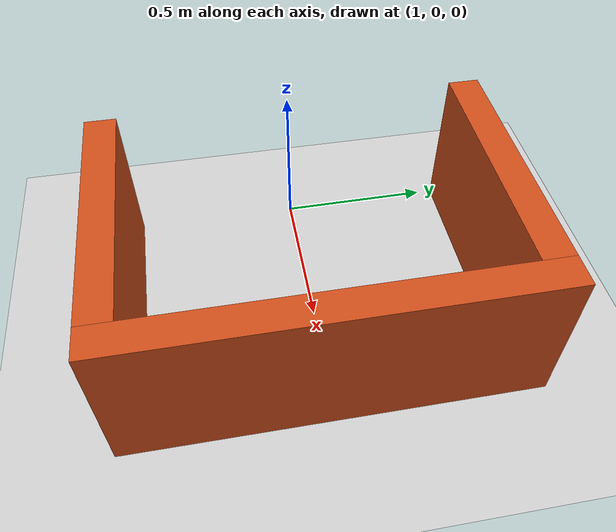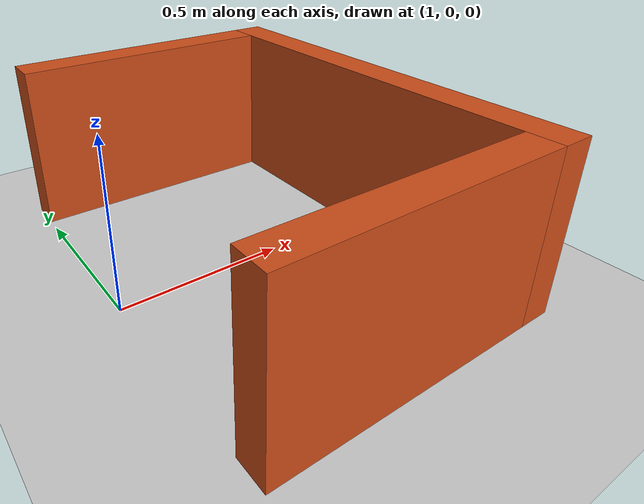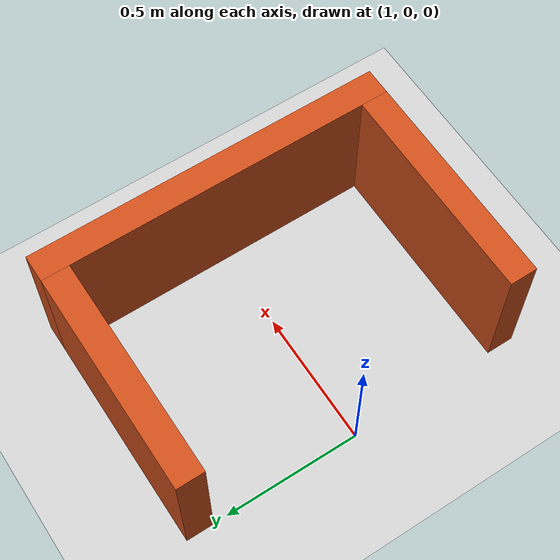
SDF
<?xml version="1.0"?>
<sdf version="1.6">
  <world name="default">
  <plugin
    filename="gz-sim-physics-system"
    name="gz::sim::systems::Physics">
  </plugin>
  <plugin
    filename="gz-sim-user-commands-system"
    name="gz::sim::systems::UserCommands">
  </plugin>
  <plugin
    filename="gz-sim-scene-broadcaster-system"
    name="gz::sim::systems::SceneBroadcaster">
  </plugin>
  <plugin
    filename="gz-sim-sensors-system"
    name="gz::sim::systems::Sensors">
    <render_engine>ogre2</render_engine>
  </plugin>
  <plugin
    filename="gz-sim-imu-system"
    name="gz::sim::systems::Imu">
  </plugin>
    <include>
      <uri>https://fuel.gazebosim.org/1.0/OpenRobotics/models/Ground Plane</uri>
    </include>

    <include>
      <uri>https://fuel.gazebosim.org/1.0/OpenRobotics/models/Sun</uri>
    </include>

    <model name="u_back">
      <static>true</static>
      <pose>1.85 0 0.25 0 0 0</pose>
      <link name="link">
        <collision name="collision">
          <geometry><box><size>0.1 1.3 0.5</size></box></geometry>
        </collision>
        <visual name="visual">
          <geometry><box><size>0.1 1.3 0.5</size></box></geometry>
          <material>
            <ambient>0.8 0.3 0.1 1</ambient>
            <diffuse>0.8 0.3 0.1 1</diffuse>
          </material>
        </visual>
      </link>
    </model>

    <model name="u_left">
      <static>true</static>
      <pose>1.4 0.6 0.25 0 0 0</pose>
      <link name="link">
        <collision name="collision">
          <geometry><box><size>0.8 0.1 0.5</size></box></geometry>
        </collision>
        <visual name="visual">
          <geometry><box><size>0.8 0.1 0.5</size></box></geometry>
          <material>
            <ambient>0.8 0.3 0.1 1</ambient>
            <diffuse>0.8 0.3 0.1 1</diffuse>
          </material>
        </visual>
      </link>
    </model>

    <model name="u_right">
      <static>true</static>
      <pose>1.4 -0.6 0.25 0 0 0</pose>
      <link name="link">
        <collision name="collision">
          <geometry><box><size>0.8 0.1 0.5</size></box></geometry>
        </collision>
        <visual name="visual">
          <geometry><box><size>0.8 0.1 0.5</size></box></geometry>
          <material>
            <ambient>0.8 0.3 0.1 1</ambient>
            <diffuse>0.8 0.3 0.1 1</diffuse>
          </material>
        </visual>
      </link>
    </model>

    <scene>
      <shadows>false</shadows>
    </scene>

    <gui fullscreen='0'>
      <camera name='user_camera'>
        <pose frame=''>0.319654 -0.235002 9.29441 0 1.5138 0.009599</pose>
        <view_controller>orbit</view_controller>
        <projection_type>perspective</projection_type>
      </camera>
    </gui>

    <physics type="ode">
      <real_time_update_rate>1000.0</real_time_update_rate>
      <max_step_size>0.001</max_step_size>
      <real_time_factor>1</real_time_factor>
      <ode>
        <solver>
          <type>quick</type>
          <iters>150</iters>
          <precon_iters>0</precon_iters>
          <sor>1.400000</sor>
          <use_dynamic_moi_rescaling>1</use_dynamic_moi_rescaling>
        </solver>
        <constraints>
          <cfm>0.00001</cfm>
          <erp>0.2</erp>
          <contact_max_correcting_vel>2000.000000</contact_max_correcting_vel>
          <contact_surface_layer>0.01000</contact_surface_layer>
        </constraints>
      </ode>
    </physics>

  </world>
</sdf>
